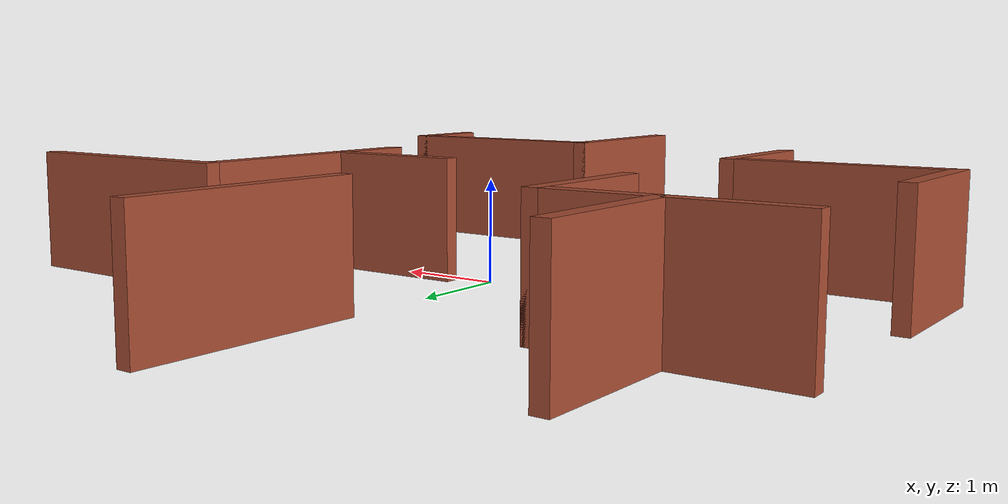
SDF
<?xml version='1.0'?>
<sdf version='1.7'>
  <model name='MUNDO_FINAL_OBSTACULOS'>
    <pose>0.141 -0.19 0 0 -0 0</pose>
    <link name='Wall_47'>
      <collision name='Wall_47_Collision'>
        <geometry>
          <box>
            <size>2.25 0.15 1.2</size>
          </box>
        </geometry>
        <pose>0 0 0.6 0 -0 0</pose>
      </collision>
      <visual name='Wall_47_Visual'>
        <pose>0 0 0.6 0 -0 0</pose>
        <geometry>
          <box>
            <size>2.25 0.15 1.2</size>
          </box>
        </geometry>
        <material>
          <script>
            <uri>file://media/materials/scripts/gazebo.material</uri>
            <name>Gazebo/Bricks</name>
          </script>
          <ambient>1 1 1 1</ambient>
        </material>
        <meta>
          <layer>0</layer>
        </meta>
      </visual>
      <pose>-0.092 3.292 0 0 -0 1.5708</pose>
    </link>
    <link name='Wall_49'>
      <collision name='Wall_49_Collision'>
        <geometry>
          <box>
            <size>2.5 0.15 1.2</size>
          </box>
        </geometry>
        <pose>0 0 0.6 0 -0 0</pose>
      </collision>
      <visual name='Wall_49_Visual'>
        <pose>0 0 0.6 0 -0 0</pose>
        <geometry>
          <box>
            <size>2.5 0.15 1.2</size>
          </box>
        </geometry>
        <material>
          <script>
            <uri>file://media/materials/scripts/gazebo.material</uri>
            <name>Gazebo/Bricks</name>
          </script>
          <ambient>1 1 1 1</ambient>
        </material>
        <meta>
          <layer>0</layer>
        </meta>
      </visual>
      <pose>2.86 2.11 0 0 -0 3.14159</pose>
    </link>
    <link name='Wall_50'>
      <collision name='Wall_50_Collision'>
        <geometry>
          <box>
            <size>2.75 0.15 1.2</size>
          </box>
        </geometry>
        <pose>0 0 0.6 0 -0 0</pose>
      </collision>
      <visual name='Wall_50_Visual'>
        <pose>0 0 0.6 0 -0 0</pose>
        <geometry>
          <box>
            <size>2.75 0.15 1.2</size>
          </box>
        </geometry>
        <material>
          <script>
            <uri>file://media/materials/scripts/gazebo.material</uri>
            <name>Gazebo/Bricks</name>
          </script>
          <ambient>1 1 1 1</ambient>
        </material>
        <meta>
          <layer>0</layer>
        </meta>
      </visual>
      <pose>1.685 0.81 0 0 -0 -1.5708</pose>
    </link>
    <link name='Wall_52'>
      <collision name='Wall_52_Collision'>
        <geometry>
          <box>
            <size>1.5 0.15 1.2</size>
          </box>
        </geometry>
        <pose>0 0 0.6 0 -0 0</pose>
      </collision>
      <visual name='Wall_52_Visual'>
        <pose>0 0 0.6 0 -0 0</pose>
        <geometry>
          <box>
            <size>1.5 0.15 1.2</size>
          </box>
        </geometry>
        <material>
          <script>
            <uri>file://media/materials/scripts/gazebo.material</uri>
            <name>Gazebo/Bricks</name>
          </script>
          <ambient>1 1 1 1</ambient>
        </material>
        <meta>
          <layer>0</layer>
        </meta>
      </visual>
      <pose>0.972 0.333 0 0 -0 0</pose>
    </link>
    <link name='Wall_54'>
      <collision name='Wall_54_Collision'>
        <geometry>
          <box>
            <size>2.25 0.15 1.2</size>
          </box>
        </geometry>
        <pose>0 0 0.6 0 -0 0</pose>
      </collision>
      <visual name='Wall_54_Visual'>
        <pose>0 0 0.6 0 -0 0</pose>
        <geometry>
          <box>
            <size>2.25 0.15 1.2</size>
          </box>
        </geometry>
        <material>
          <script>
            <uri>file://media/materials/scripts/gazebo.material</uri>
            <name>Gazebo/Bricks</name>
          </script>
          <ambient>1 1 1 1</ambient>
        </material>
        <meta>
          <layer>0</layer>
        </meta>
      </visual>
      <pose>-2.985 2.118 0 0 -0 0</pose>
    </link>
    <link name='Wall_55'>
      <collision name='Wall_55_Collision'>
        <geometry>
          <box>
            <size>1.5 0.15 1.2</size>
          </box>
        </geometry>
        <pose>0 0 0.6 0 -0 0</pose>
      </collision>
      <visual name='Wall_55_Visual'>
        <pose>0 0 0.6 0 -0 0</pose>
        <geometry>
          <box>
            <size>1.5 0.15 1.2</size>
          </box>
        </geometry>
        <material>
          <script>
            <uri>file://media/materials/scripts/gazebo.material</uri>
            <name>Gazebo/Bricks</name>
          </script>
          <ambient>1 1 1 1</ambient>
        </material>
        <meta>
          <layer>0</layer>
        </meta>
      </visual>
      <pose>-1.935 1.443 0 0 -0 -1.5708</pose>
    </link>
    <link name='Wall_57'>
      <collision name='Wall_57_Collision'>
        <geometry>
          <box>
            <size>1.5 0.15 1.2</size>
          </box>
        </geometry>
        <pose>0 0 0.6 0 -0 0</pose>
      </collision>
      <visual name='Wall_57_Visual'>
        <pose>0 0 0.6 0 -0 0</pose>
        <geometry>
          <box>
            <size>1.5 0.15 1.2</size>
          </box>
        </geometry>
        <material>
          <script>
            <uri>file://media/materials/scripts/gazebo.material</uri>
            <name>Gazebo/Bricks</name>
          </script>
          <ambient>1 1 1 1</ambient>
        </material>
        <meta>
          <layer>0</layer>
        </meta>
      </visual>
      <pose>-2.961 2.847 0 0 -0 1.5708</pose>
    </link>
    <link name='Wall_59'>
      <collision name='Wall_59_Collision'>
        <geometry>
          <box>
            <size>1.5 0.15 1.2</size>
          </box>
        </geometry>
        <pose>0 0 0.6 0 -0 0</pose>
      </collision>
      <visual name='Wall_59_Visual'>
        <pose>0 0 0.6 0 -0 0</pose>
        <geometry>
          <box>
            <size>1.5 0.15 1.2</size>
          </box>
        </geometry>
        <material>
          <script>
            <uri>file://media/materials/scripts/gazebo.material</uri>
            <name>Gazebo/Bricks</name>
          </script>
          <ambient>1 1 1 1</ambient>
        </material>
        <meta>
          <layer>0</layer>
        </meta>
      </visual>
      <pose>-4.02 -0.599 0 0 -0 -1.5708</pose>
    </link>
    <link name='Wall_60'>
      <collision name='Wall_60_Collision'>
        <geometry>
          <box>
            <size>2.25 0.15 1.2</size>
          </box>
        </geometry>
        <pose>0 0 0.6 0 -0 0</pose>
      </collision>
      <visual name='Wall_60_Visual'>
        <pose>0 0 0.6 0 -0 0</pose>
        <geometry>
          <box>
            <size>2.25 0.15 1.2</size>
          </box>
        </geometry>
        <material>
          <script>
            <uri>file://media/materials/scripts/gazebo.material</uri>
            <name>Gazebo/Bricks</name>
          </script>
          <ambient>1 1 1 1</ambient>
        </material>
        <meta>
          <layer>0</layer>
        </meta>
      </visual>
      <pose>-2.97 -1.274 0 0 -0 0</pose>
    </link>
    <link name='Wall_61'>
      <collision name='Wall_61_Collision'>
        <geometry>
          <box>
            <size>1.5 0.15 1.2</size>
          </box>
        </geometry>
        <pose>0 0 0.6 0 -0 0</pose>
      </collision>
      <visual name='Wall_61_Visual'>
        <pose>0 0 0.6 0 -0 0</pose>
        <geometry>
          <box>
            <size>1.5 0.15 1.2</size>
          </box>
        </geometry>
        <material>
          <script>
            <uri>file://media/materials/scripts/gazebo.material</uri>
            <name>Gazebo/Bricks</name>
          </script>
          <ambient>1 1 1 1</ambient>
        </material>
        <meta>
          <layer>0</layer>
        </meta>
      </visual>
      <pose>-1.92 -1.949 0 0 -0 -1.5708</pose>
    </link>
    <link name='Wall_63'>
      <collision name='Wall_63_Collision'>
        <geometry>
          <box>
            <size>2 0.15 1.2</size>
          </box>
        </geometry>
        <pose>0 0 0.6 0 -0 0</pose>
      </collision>
      <visual name='Wall_63_Visual'>
        <pose>0 0 0.6 0 -0 0</pose>
        <geometry>
          <box>
            <size>2 0.15 1.2</size>
          </box>
        </geometry>
        <material>
          <script>
            <uri>file://media/materials/scripts/gazebo.material</uri>
            <name>Gazebo/Bricks</name>
          </script>
          <ambient>1 1 1 1</ambient>
        </material>
        <meta>
          <layer>0</layer>
        </meta>
      </visual>
      <pose>0.479 -3.417 0 0 -0 1.5708</pose>
    </link>
    <link name='Wall_64'>
      <collision name='Wall_64_Collision'>
        <geometry>
          <box>
            <size>2.5 0.15 1.2</size>
          </box>
        </geometry>
        <pose>0 0 0.6 0 -0 0</pose>
      </collision>
      <visual name='Wall_64_Visual'>
        <pose>0 0 0.6 0 -0 0</pose>
        <geometry>
          <box>
            <size>2.5 0.15 1.2</size>
          </box>
        </geometry>
        <material>
          <script>
            <uri>file://media/materials/scripts/gazebo.material</uri>
            <name>Gazebo/Bricks</name>
          </script>
          <ambient>1 1 1 1</ambient>
        </material>
        <meta>
          <layer>0</layer>
        </meta>
      </visual>
      <pose>1.654 -2.492 0 0 -0 0</pose>
    </link>
    <link name='Wall_65'>
      <collision name='Wall_65_Collision'>
        <geometry>
          <box>
            <size>1 0.15 1.2</size>
          </box>
        </geometry>
        <pose>0 0 0.6 0 -0 0</pose>
      </collision>
      <visual name='Wall_65_Visual'>
        <pose>0 0 0.6 0 -0 0</pose>
        <geometry>
          <box>
            <size>1 0.15 1.2</size>
          </box>
        </geometry>
        <material>
          <script>
            <uri>file://media/materials/scripts/gazebo.material</uri>
            <name>Gazebo/Bricks</name>
          </script>
          <ambient>1 1 1 1</ambient>
        </material>
        <meta>
          <layer>0</layer>
        </meta>
      </visual>
      <pose>2.829 -2.917 0 0 -0 -1.5708</pose>
    </link>
    <static>1</static>
  </model>
</sdf>
